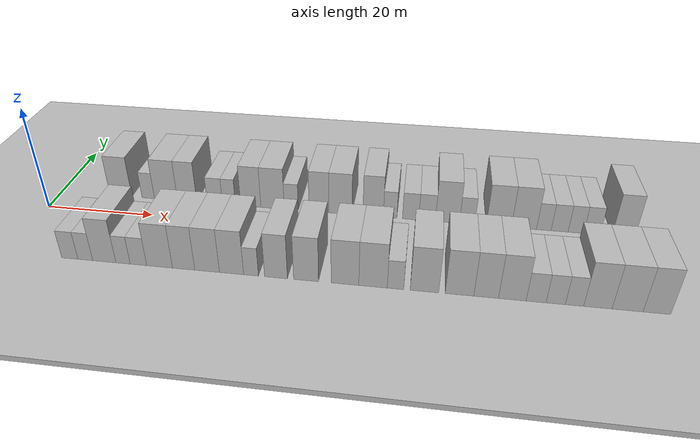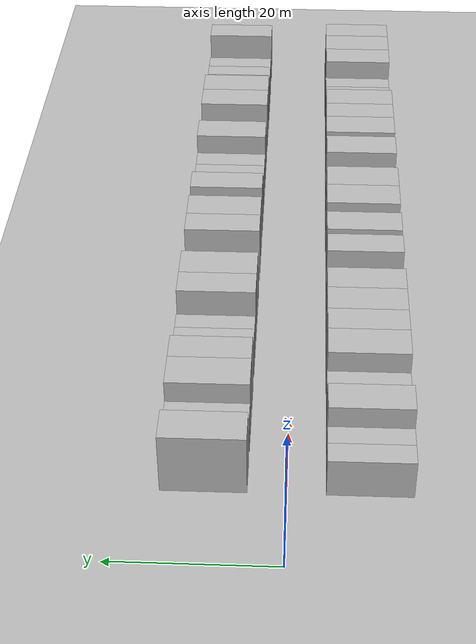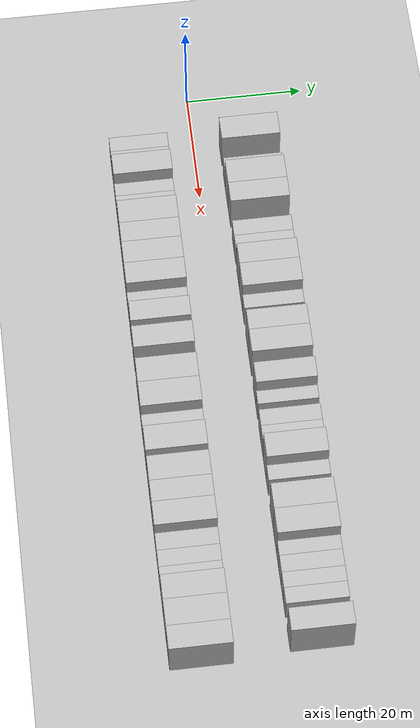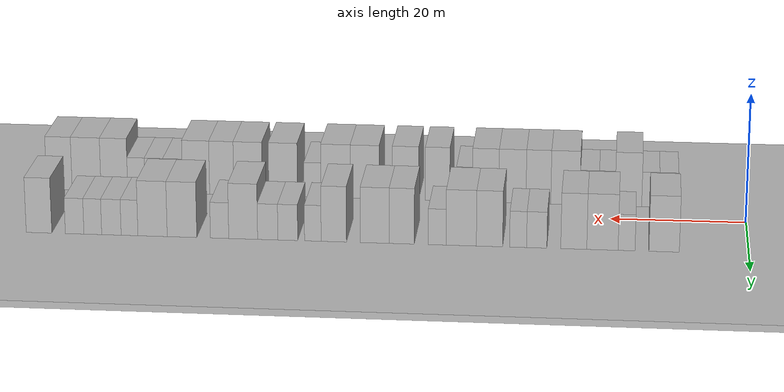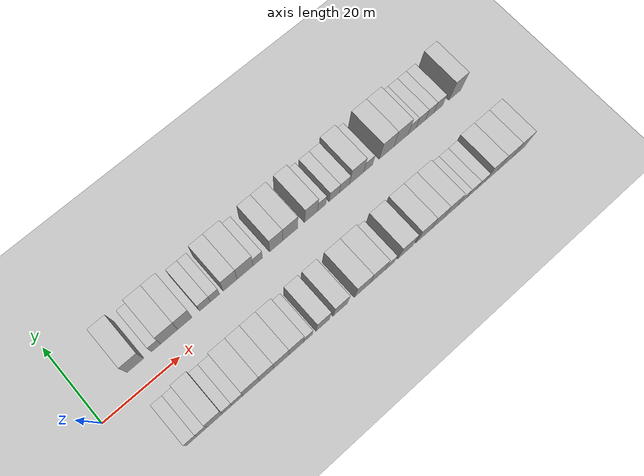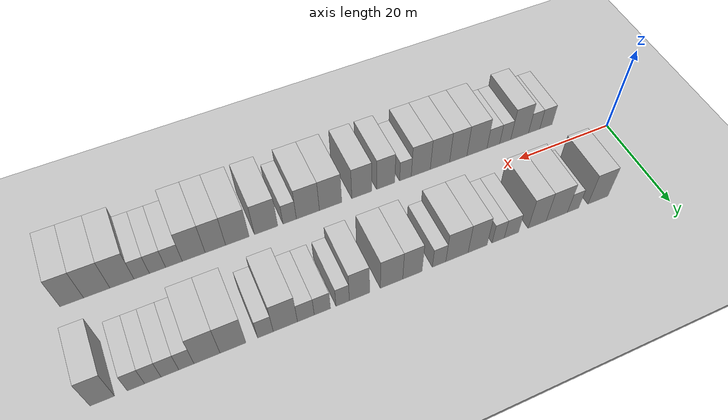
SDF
<sdf version="1.6">
 <world name="default">
  <include><name>ground_plane_1</name><uri>model://HANNAS_ground_plane</uri></include>
  <include>
   <name>ground_plane_2</name>
   <uri>model://HANNAS_ground_plane</uri>
   <pose>100 0 0  0 0 0</pose>
  </include>
  <model name="building_1">
   <static>1</static>
   <pose>12.1707 9.5000 0 0.000000 0.000000 1.570796</pose>
   <link name="link">
    <pose>0 0 4.50 0 0 0</pose>
    <collision name="collision"><geometry><box><size>10.0000 4.3413 9.0000</size></box></geometry></collision>
    <visual name="visual">
     <cast_shadows>0</cast_shadows>
     <geometry><box><size>10.0000 4.3413 9.0000</size></box></geometry>
     <material>
      <script>
       <uri>model://HANNAS_wall/materials/scripts</uri>
       <uri>model://HANNAS_wall/materials/textures</uri>
       <name>vrc/HANNAS_wall</name>
      </script>
     </material>
    </visual>
   </link>
  </model>
  <model name="building_2">
   <static>1</static>
   <pose>17.5541 9.5000 0 0.000000 0.000000 1.570796</pose>
   <link name="link">
    <pose>0 0 3.00 0 0 0</pose>
    <collision name="collision"><geometry><box><size>10.0000 2.4256 6.0000</size></box></geometry></collision>
    <visual name="visual">
     <cast_shadows>0</cast_shadows>
     <geometry><box><size>10.0000 2.4256 6.0000</size></box></geometry>
     <material>
      <script>
       <uri>model://HANNAS_wall/materials/scripts</uri>
       <uri>model://HANNAS_wall/materials/textures</uri>
       <name>vrc/HANNAS_wall</name>
      </script>
     </material>
    </visual>
   </link>
  </model>
  <model name="building_3">
   <static>1</static>
   <pose>21.0148 9.5000 0 0.000000 0.000000 1.570796</pose>
   <link name="link">
    <pose>0 0 4.50 0 0 0</pose>
    <collision name="collision"><geometry><box><size>10.0000 4.4958 9.0000</size></box></geometry></collision>
    <visual name="visual">
     <cast_shadows>0</cast_shadows>
     <geometry><box><size>10.0000 4.4958 9.0000</size></box></geometry>
     <material>
      <script>
       <uri>model://HANNAS_wall/materials/scripts</uri>
       <uri>model://HANNAS_wall/materials/textures</uri>
       <name>vrc/HANNAS_wall</name>
      </script>
     </material>
    </visual>
   </link>
  </model>
  <model name="building_4">
   <static>1</static>
   <pose>25.1344 9.5000 0 0.000000 0.000000 1.570796</pose>
   <link name="link">
    <pose>0 0 4.50 0 0 0</pose>
    <collision name="collision"><geometry><box><size>10.0000 3.7433 9.0000</size></box></geometry></collision>
    <visual name="visual">
     <cast_shadows>0</cast_shadows>
     <geometry><box><size>10.0000 3.7433 9.0000</size></box></geometry>
     <material>
      <script>
       <uri>model://HANNAS_wall/materials/scripts</uri>
       <uri>model://HANNAS_wall/materials/textures</uri>
       <name>vrc/HANNAS_wall</name>
      </script>
     </material>
    </visual>
   </link>
  </model>
  <model name="building_5">
   <static>1</static>
   <pose>30.4679 9.5000 0 0.000000 0.000000 1.570796</pose>
   <link name="link">
    <pose>0 0 3.00 0 0 0</pose>
    <collision name="collision"><geometry><box><size>10.0000 2.9237 6.0000</size></box></geometry></collision>
    <visual name="visual">
     <cast_shadows>0</cast_shadows>
     <geometry><box><size>10.0000 2.9237 6.0000</size></box></geometry>
     <material>
      <script>
       <uri>model://HANNAS_wall/materials/scripts</uri>
       <uri>model://HANNAS_wall/materials/textures</uri>
       <name>vrc/HANNAS_wall</name>
      </script>
     </material>
    </visual>
   </link>
  </model>
  <model name="building_6">
   <static>1</static>
   <pose>33.1570 9.5000 0 0.000000 0.000000 1.570796</pose>
   <link name="link">
    <pose>0 0 3.00 0 0 0</pose>
    <collision name="collision"><geometry><box><size>10.0000 2.4545 6.0000</size></box></geometry></collision>
    <visual name="visual">
     <cast_shadows>0</cast_shadows>
     <geometry><box><size>10.0000 2.4545 6.0000</size></box></geometry>
     <material>
      <script>
       <uri>model://HANNAS_wall/materials/scripts</uri>
       <uri>model://HANNAS_wall/materials/textures</uri>
       <name>vrc/HANNAS_wall</name>
      </script>
     </material>
    </visual>
   </link>
  </model>
  <model name="building_7">
   <static>1</static>
   <pose>37.2861 9.5000 0 0.000000 0.000000 1.570796</pose>
   <link name="link">
    <pose>0 0 4.50 0 0 0</pose>
    <collision name="collision"><geometry><box><size>10.0000 3.8037 9.0000</size></box></geometry></collision>
    <visual name="visual">
     <cast_shadows>0</cast_shadows>
     <geometry><box><size>10.0000 3.8037 9.0000</size></box></geometry>
     <material>
      <script>
       <uri>model://HANNAS_wall/materials/scripts</uri>
       <uri>model://HANNAS_wall/materials/textures</uri>
       <name>vrc/HANNAS_wall</name>
      </script>
     </material>
    </visual>
   </link>
  </model>
  <model name="building_8">
   <static>1</static>
   <pose>41.3800 9.5000 0 0.000000 0.000000 1.570796</pose>
   <link name="link">
    <pose>0 0 4.50 0 0 0</pose>
    <collision name="collision"><geometry><box><size>10.0000 4.3842 9.0000</size></box></geometry></collision>
    <visual name="visual">
     <cast_shadows>0</cast_shadows>
     <geometry><box><size>10.0000 4.3842 9.0000</size></box></geometry>
     <material>
      <script>
       <uri>model://HANNAS_wall/materials/scripts</uri>
       <uri>model://HANNAS_wall/materials/textures</uri>
       <name>vrc/HANNAS_wall</name>
      </script>
     </material>
    </visual>
   </link>
  </model>
  <model name="building_9">
   <static>1</static>
   <pose>44.8732 9.5000 0 0.000000 0.000000 1.570796</pose>
   <link name="link">
    <pose>0 0 3.00 0 0 0</pose>
    <collision name="collision"><geometry><box><size>10.0000 2.6022 6.0000</size></box></geometry></collision>
    <visual name="visual">
     <cast_shadows>0</cast_shadows>
     <geometry><box><size>10.0000 2.6022 6.0000</size></box></geometry>
     <material>
      <script>
       <uri>model://HANNAS_wall/materials/scripts</uri>
       <uri>model://HANNAS_wall/materials/textures</uri>
       <name>vrc/HANNAS_wall</name>
      </script>
     </material>
    </visual>
   </link>
  </model>
  <model name="building_10">
   <static>1</static>
   <pose>50.0068 9.5000 0 0.000000 0.000000 1.570796</pose>
   <link name="link">
    <pose>0 0 4.50 0 0 0</pose>
    <collision name="collision"><geometry><box><size>10.0000 3.6650 9.0000</size></box></geometry></collision>
    <visual name="visual">
     <cast_shadows>0</cast_shadows>
     <geometry><box><size>10.0000 3.6650 9.0000</size></box></geometry>
     <material>
      <script>
       <uri>model://HANNAS_wall/materials/scripts</uri>
       <uri>model://HANNAS_wall/materials/textures</uri>
       <name>vrc/HANNAS_wall</name>
      </script>
     </material>
    </visual>
   </link>
  </model>
  <model name="building_11">
   <static>1</static>
   <pose>53.9409 9.5000 0 0.000000 0.000000 1.570796</pose>
   <link name="link">
    <pose>0 0 4.50 0 0 0</pose>
    <collision name="collision"><geometry><box><size>10.0000 4.2031 9.0000</size></box></geometry></collision>
    <visual name="visual">
     <cast_shadows>0</cast_shadows>
     <geometry><box><size>10.0000 4.2031 9.0000</size></box></geometry>
     <material>
      <script>
       <uri>model://HANNAS_wall/materials/scripts</uri>
       <uri>model://HANNAS_wall/materials/textures</uri>
       <name>vrc/HANNAS_wall</name>
      </script>
     </material>
    </visual>
   </link>
  </model>
  <model name="building_12">
   <static>1</static>
   <pose>59.8919 9.5000 0 0.000000 0.000000 1.570796</pose>
   <link name="link">
    <pose>0 0 4.50 0 0 0</pose>
    <collision name="collision"><geometry><box><size>10.0000 3.6989 9.0000</size></box></geometry></collision>
    <visual name="visual">
     <cast_shadows>0</cast_shadows>
     <geometry><box><size>10.0000 3.6989 9.0000</size></box></geometry>
     <material>
      <script>
       <uri>model://HANNAS_wall/materials/scripts</uri>
       <uri>model://HANNAS_wall/materials/textures</uri>
       <name>vrc/HANNAS_wall</name>
      </script>
     </material>
    </visual>
   </link>
  </model>
  <model name="building_13">
   <static>1</static>
   <pose>62.9533 9.5000 0 0.000000 0.000000 1.570796</pose>
   <link name="link">
    <pose>0 0 3.00 0 0 0</pose>
    <collision name="collision"><geometry><box><size>10.0000 2.4239 6.0000</size></box></geometry></collision>
    <visual name="visual">
     <cast_shadows>0</cast_shadows>
     <geometry><box><size>10.0000 2.4239 6.0000</size></box></geometry>
     <material>
      <script>
       <uri>model://HANNAS_wall/materials/scripts</uri>
       <uri>model://HANNAS_wall/materials/textures</uri>
       <name>vrc/HANNAS_wall</name>
      </script>
     </material>
    </visual>
   </link>
  </model>
  <model name="building_14">
   <static>1</static>
   <pose>66.6167 9.5000 0 0.000000 0.000000 1.570796</pose>
   <link name="link">
    <pose>0 0 3.00 0 0 0</pose>
    <collision name="collision"><geometry><box><size>10.0000 2.9030 6.0000</size></box></geometry></collision>
    <visual name="visual">
     <cast_shadows>0</cast_shadows>
     <geometry><box><size>10.0000 2.9030 6.0000</size></box></geometry>
     <material>
      <script>
       <uri>model://HANNAS_wall/materials/scripts</uri>
       <uri>model://HANNAS_wall/materials/textures</uri>
       <name>vrc/HANNAS_wall</name>
      </script>
     </material>
    </visual>
   </link>
  </model>
  <model name="building_15">
   <static>1</static>
   <pose>69.5515 9.5000 0 0.000000 0.000000 1.570796</pose>
   <link name="link">
    <pose>0 0 3.00 0 0 0</pose>
    <collision name="collision"><geometry><box><size>10.0000 2.9666 6.0000</size></box></geometry></collision>
    <visual name="visual">
     <cast_shadows>0</cast_shadows>
     <geometry><box><size>10.0000 2.9666 6.0000</size></box></geometry>
     <material>
      <script>
       <uri>model://HANNAS_wall/materials/scripts</uri>
       <uri>model://HANNAS_wall/materials/textures</uri>
       <name>vrc/HANNAS_wall</name>
      </script>
     </material>
    </visual>
   </link>
  </model>
  <model name="building_16">
   <static>1</static>
   <pose>73.1514 9.5000 0 0.000000 0.000000 1.570796</pose>
   <link name="link">
    <pose>0 0 4.50 0 0 0</pose>
    <collision name="collision"><geometry><box><size>10.0000 4.2332 9.0000</size></box></geometry></collision>
    <visual name="visual">
     <cast_shadows>0</cast_shadows>
     <geometry><box><size>10.0000 4.2332 9.0000</size></box></geometry>
     <material>
      <script>
       <uri>model://HANNAS_wall/materials/scripts</uri>
       <uri>model://HANNAS_wall/materials/textures</uri>
       <name>vrc/HANNAS_wall</name>
      </script>
     </material>
    </visual>
   </link>
  </model>
  <model name="building_17">
   <static>1</static>
   <pose>76.6122 9.5000 0 0.000000 0.000000 1.570796</pose>
   <link name="link">
    <pose>0 0 3.00 0 0 0</pose>
    <collision name="collision"><geometry><box><size>10.0000 2.6884 6.0000</size></box></geometry></collision>
    <visual name="visual">
     <cast_shadows>0</cast_shadows>
     <geometry><box><size>10.0000 2.6884 6.0000</size></box></geometry>
     <material>
      <script>
       <uri>model://HANNAS_wall/materials/scripts</uri>
       <uri>model://HANNAS_wall/materials/textures</uri>
       <name>vrc/HANNAS_wall</name>
      </script>
     </material>
    </visual>
   </link>
  </model>
  <model name="building_18">
   <static>1</static>
   <pose>82.1351 9.5000 0 0.000000 0.000000 1.570796</pose>
   <link name="link">
    <pose>0 0 4.50 0 0 0</pose>
    <collision name="collision"><geometry><box><size>10.0000 4.3573 9.0000</size></box></geometry></collision>
    <visual name="visual">
     <cast_shadows>0</cast_shadows>
     <geometry><box><size>10.0000 4.3573 9.0000</size></box></geometry>
     <material>
      <script>
       <uri>model://HANNAS_wall/materials/scripts</uri>
       <uri>model://HANNAS_wall/materials/textures</uri>
       <name>vrc/HANNAS_wall</name>
      </script>
     </material>
    </visual>
   </link>
  </model>
  <model name="building_19">
   <static>1</static>
   <pose>86.4716 9.5000 0 0.000000 0.000000 1.570796</pose>
   <link name="link">
    <pose>0 0 4.50 0 0 0</pose>
    <collision name="collision"><geometry><box><size>10.0000 4.3158 9.0000</size></box></geometry></collision>
    <visual name="visual">
     <cast_shadows>0</cast_shadows>
     <geometry><box><size>10.0000 4.3158 9.0000</size></box></geometry>
     <material>
      <script>
       <uri>model://HANNAS_wall/materials/scripts</uri>
       <uri>model://HANNAS_wall/materials/textures</uri>
       <name>vrc/HANNAS_wall</name>
      </script>
     </material>
    </visual>
   </link>
  </model>
  <model name="building_20">
   <static>1</static>
   <pose>89.8686 9.5000 0 0.000000 0.000000 1.570796</pose>
   <link name="link">
    <pose>0 0 3.00 0 0 0</pose>
    <collision name="collision"><geometry><box><size>10.0000 2.4782 6.0000</size></box></geometry></collision>
    <visual name="visual">
     <cast_shadows>0</cast_shadows>
     <geometry><box><size>10.0000 2.4782 6.0000</size></box></geometry>
     <material>
      <script>
       <uri>model://HANNAS_wall/materials/scripts</uri>
       <uri>model://HANNAS_wall/materials/textures</uri>
       <name>vrc/HANNAS_wall</name>
      </script>
     </material>
    </visual>
   </link>
  </model>
  <model name="building_21">
   <static>1</static>
   <pose>92.5483 9.5000 0 0.000000 0.000000 1.570796</pose>
   <link name="link">
    <pose>0 0 3.00 0 0 0</pose>
    <collision name="collision"><geometry><box><size>10.0000 2.8812 6.0000</size></box></geometry></collision>
    <visual name="visual">
     <cast_shadows>0</cast_shadows>
     <geometry><box><size>10.0000 2.8812 6.0000</size></box></geometry>
     <material>
      <script>
       <uri>model://HANNAS_wall/materials/scripts</uri>
       <uri>model://HANNAS_wall/materials/textures</uri>
       <name>vrc/HANNAS_wall</name>
      </script>
     </material>
    </visual>
   </link>
  </model>
  <model name="building_22">
   <static>1</static>
   <pose>95.3012 9.5000 0 0.000000 0.000000 1.570796</pose>
   <link name="link">
    <pose>0 0 3.00 0 0 0</pose>
    <collision name="collision"><geometry><box><size>10.0000 2.6247 6.0000</size></box></geometry></collision>
    <visual name="visual">
     <cast_shadows>0</cast_shadows>
     <geometry><box><size>10.0000 2.6247 6.0000</size></box></geometry>
     <material>
      <script>
       <uri>model://HANNAS_wall/materials/scripts</uri>
       <uri>model://HANNAS_wall/materials/textures</uri>
       <name>vrc/HANNAS_wall</name>
      </script>
     </material>
    </visual>
   </link>
  </model>
  <model name="building_23">
   <static>1</static>
   <pose>97.9914 9.5000 0 0.000000 0.000000 1.570796</pose>
   <link name="link">
    <pose>0 0 3.00 0 0 0</pose>
    <collision name="collision"><geometry><box><size>10.0000 2.7557 6.0000</size></box></geometry></collision>
    <visual name="visual">
     <cast_shadows>0</cast_shadows>
     <geometry><box><size>10.0000 2.7557 6.0000</size></box></geometry>
     <material>
      <script>
       <uri>model://HANNAS_wall/materials/scripts</uri>
       <uri>model://HANNAS_wall/materials/textures</uri>
       <name>vrc/HANNAS_wall</name>
      </script>
     </material>
    </visual>
   </link>
  </model>
  <model name="building_24">
   <static>1</static>
   <pose>103.2689 9.5000 0 0.000000 0.000000 1.570796</pose>
   <link name="link">
    <pose>0 0 4.50 0 0 0</pose>
    <collision name="collision"><geometry><box><size>10.0000 3.7992 9.0000</size></box></geometry></collision>
    <visual name="visual">
     <cast_shadows>0</cast_shadows>
     <geometry><box><size>10.0000 3.7992 9.0000</size></box></geometry>
     <material>
      <script>
       <uri>model://HANNAS_wall/materials/scripts</uri>
       <uri>model://HANNAS_wall/materials/textures</uri>
       <name>vrc/HANNAS_wall</name>
      </script>
     </material>
    </visual>
   </link>
  </model>
  <model name="building_50">
   <static>1</static>
   <pose>11.4105 -9.5000 0 0.000000 0.000000 1.570796</pose>
   <link name="link">
    <pose>0 0 3.00 0 0 0</pose>
    <collision name="collision"><geometry><box><size>10.0000 2.8209 6.0000</size></box></geometry></collision>
    <visual name="visual">
     <cast_shadows>0</cast_shadows>
     <geometry><box><size>10.0000 2.8209 6.0000</size></box></geometry>
     <material>
      <script>
       <uri>model://HANNAS_wall/materials/scripts</uri>
       <uri>model://HANNAS_wall/materials/textures</uri>
       <name>vrc/HANNAS_wall</name>
      </script>
     </material>
    </visual>
   </link>
  </model>
  <model name="building_51">
   <static>1</static>
   <pose>14.1121 -9.5000 0 0.000000 0.000000 1.570796</pose>
   <link name="link">
    <pose>0 0 3.00 0 0 0</pose>
    <collision name="collision"><geometry><box><size>10.0000 2.5823 6.0000</size></box></geometry></collision>
    <visual name="visual">
     <cast_shadows>0</cast_shadows>
     <geometry><box><size>10.0000 2.5823 6.0000</size></box></geometry>
     <material>
      <script>
       <uri>model://HANNAS_wall/materials/scripts</uri>
       <uri>model://HANNAS_wall/materials/textures</uri>
       <name>vrc/HANNAS_wall</name>
      </script>
     </material>
    </visual>
   </link>
  </model>
  <model name="building_52">
   <static>1</static>
   <pose>17.4011 -9.5000 0 0.000000 0.000000 1.570796</pose>
   <link name="link">
    <pose>0 0 4.50 0 0 0</pose>
    <collision name="collision"><geometry><box><size>10.0000 3.9959 9.0000</size></box></geometry></collision>
    <visual name="visual">
     <cast_shadows>0</cast_shadows>
     <geometry><box><size>10.0000 3.9959 9.0000</size></box></geometry>
     <material>
      <script>
       <uri>model://HANNAS_wall/materials/scripts</uri>
       <uri>model://HANNAS_wall/materials/textures</uri>
       <name>vrc/HANNAS_wall</name>
      </script>
     </material>
    </visual>
   </link>
  </model>
  <model name="building_53">
   <static>1</static>
   <pose>20.6244 -9.5000 0 0.000000 0.000000 1.570796</pose>
   <link name="link">
    <pose>0 0 3.00 0 0 0</pose>
    <collision name="collision"><geometry><box><size>10.0000 2.4506 6.0000</size></box></geometry></collision>
    <visual name="visual">
     <cast_shadows>0</cast_shadows>
     <geometry><box><size>10.0000 2.4506 6.0000</size></box></geometry>
     <material>
      <script>
       <uri>model://HANNAS_wall/materials/scripts</uri>
       <uri>model://HANNAS_wall/materials/textures</uri>
       <name>vrc/HANNAS_wall</name>
      </script>
     </material>
    </visual>
   </link>
  </model>
  <model name="building_54">
   <static>1</static>
   <pose>23.2580 -9.5000 0 0.000000 0.000000 1.570796</pose>
   <link name="link">
    <pose>0 0 3.00 0 0 0</pose>
    <collision name="collision"><geometry><box><size>10.0000 2.8168 6.0000</size></box></geometry></collision>
    <visual name="visual">
     <cast_shadows>0</cast_shadows>
     <geometry><box><size>10.0000 2.8168 6.0000</size></box></geometry>
     <material>
      <script>
       <uri>model://HANNAS_wall/materials/scripts</uri>
       <uri>model://HANNAS_wall/materials/textures</uri>
       <name>vrc/HANNAS_wall</name>
      </script>
     </material>
    </visual>
   </link>
  </model>
  <model name="building_55">
   <static>1</static>
   <pose>26.8555 -9.5000 0 0.000000 0.000000 1.570796</pose>
   <link name="link">
    <pose>0 0 4.50 0 0 0</pose>
    <collision name="collision"><geometry><box><size>10.0000 4.3781 9.0000</size></box></geometry></collision>
    <visual name="visual">
     <cast_shadows>0</cast_shadows>
     <geometry><box><size>10.0000 4.3781 9.0000</size></box></geometry>
     <material>
      <script>
       <uri>model://HANNAS_wall/materials/scripts</uri>
       <uri>model://HANNAS_wall/materials/textures</uri>
       <name>vrc/HANNAS_wall</name>
      </script>
     </material>
    </visual>
   </link>
  </model>
  <model name="building_56">
   <static>1</static>
   <pose>30.9139 -9.5000 0 0.000000 0.000000 1.570796</pose>
   <link name="link">
    <pose>0 0 4.50 0 0 0</pose>
    <collision name="collision"><geometry><box><size>10.0000 3.7389 9.0000</size></box></geometry></collision>
    <visual name="visual">
     <cast_shadows>0</cast_shadows>
     <geometry><box><size>10.0000 3.7389 9.0000</size></box></geometry>
     <material>
      <script>
       <uri>model://HANNAS_wall/materials/scripts</uri>
       <uri>model://HANNAS_wall/materials/textures</uri>
       <name>vrc/HANNAS_wall</name>
      </script>
     </material>
    </visual>
   </link>
  </model>
  <model name="building_57">
   <static>1</static>
   <pose>34.8366 -9.5000 0 0.000000 0.000000 1.570796</pose>
   <link name="link">
    <pose>0 0 4.50 0 0 0</pose>
    <collision name="collision"><geometry><box><size>10.0000 4.1064 9.0000</size></box></geometry></collision>
    <visual name="visual">
     <cast_shadows>0</cast_shadows>
     <geometry><box><size>10.0000 4.1064 9.0000</size></box></geometry>
     <material>
      <script>
       <uri>model://HANNAS_wall/materials/scripts</uri>
       <uri>model://HANNAS_wall/materials/textures</uri>
       <name>vrc/HANNAS_wall</name>
      </script>
     </material>
    </visual>
   </link>
  </model>
  <model name="building_58">
   <static>1</static>
   <pose>38.8855 -9.5000 0 0.000000 0.000000 1.570796</pose>
   <link name="link">
    <pose>0 0 4.50 0 0 0</pose>
    <collision name="collision"><geometry><box><size>10.0000 3.9913 9.0000</size></box></geometry></collision>
    <visual name="visual">
     <cast_shadows>0</cast_shadows>
     <geometry><box><size>10.0000 3.9913 9.0000</size></box></geometry>
     <material>
      <script>
       <uri>model://HANNAS_wall/materials/scripts</uri>
       <uri>model://HANNAS_wall/materials/textures</uri>
       <name>vrc/HANNAS_wall</name>
      </script>
     </material>
    </visual>
   </link>
  </model>
  <model name="building_59">
   <static>1</static>
   <pose>42.0881 -9.5000 0 0.000000 0.000000 1.570796</pose>
   <link name="link">
    <pose>0 0 3.00 0 0 0</pose>
    <collision name="collision"><geometry><box><size>10.0000 2.4140 6.0000</size></box></geometry></collision>
    <visual name="visual">
     <cast_shadows>0</cast_shadows>
     <geometry><box><size>10.0000 2.4140 6.0000</size></box></geometry>
     <material>
      <script>
       <uri>model://HANNAS_wall/materials/scripts</uri>
       <uri>model://HANNAS_wall/materials/textures</uri>
       <name>vrc/HANNAS_wall</name>
      </script>
     </material>
    </visual>
   </link>
  </model>
  <model name="building_60">
   <static>1</static>
   <pose>46.1502 -9.5000 0 0.000000 0.000000 1.570796</pose>
   <link name="link">
    <pose>0 0 4.50 0 0 0</pose>
    <collision name="collision"><geometry><box><size>10.0000 3.7102 9.0000</size></box></geometry></collision>
    <visual name="visual">
     <cast_shadows>0</cast_shadows>
     <geometry><box><size>10.0000 3.7102 9.0000</size></box></geometry>
     <material>
      <script>
       <uri>model://HANNAS_wall/materials/scripts</uri>
       <uri>model://HANNAS_wall/materials/textures</uri>
       <name>vrc/HANNAS_wall</name>
      </script>
     </material>
    </visual>
   </link>
  </model>
  <model name="building_61">
   <static>1</static>
   <pose>51.0048 -9.5000 0 0.000000 0.000000 1.570796</pose>
   <link name="link">
    <pose>0 0 4.50 0 0 0</pose>
    <collision name="collision"><geometry><box><size>10.0000 3.9990 9.0000</size></box></geometry></collision>
    <visual name="visual">
     <cast_shadows>0</cast_shadows>
     <geometry><box><size>10.0000 3.9990 9.0000</size></box></geometry>
     <material>
      <script>
       <uri>model://HANNAS_wall/materials/scripts</uri>
       <uri>model://HANNAS_wall/materials/textures</uri>
       <name>vrc/HANNAS_wall</name>
      </script>
     </material>
    </visual>
   </link>
  </model>
  <model name="building_62">
   <static>1</static>
   <pose>57.1991 -9.5000 0 0.000000 0.000000 1.570796</pose>
   <link name="link">
    <pose>0 0 4.50 0 0 0</pose>
    <collision name="collision"><geometry><box><size>10.0000 4.3896 9.0000</size></box></geometry></collision>
    <visual name="visual">
     <cast_shadows>0</cast_shadows>
     <geometry><box><size>10.0000 4.3896 9.0000</size></box></geometry>
     <material>
      <script>
       <uri>model://HANNAS_wall/materials/scripts</uri>
       <uri>model://HANNAS_wall/materials/textures</uri>
       <name>vrc/HANNAS_wall</name>
      </script>
     </material>
    </visual>
   </link>
  </model>
  <model name="building_63">
   <static>1</static>
   <pose>61.6279 -9.5000 0 0.000000 0.000000 1.570796</pose>
   <link name="link">
    <pose>0 0 4.50 0 0 0</pose>
    <collision name="collision"><geometry><box><size>10.0000 4.4680 9.0000</size></box></geometry></collision>
    <visual name="visual">
     <cast_shadows>0</cast_shadows>
     <geometry><box><size>10.0000 4.4680 9.0000</size></box></geometry>
     <material>
      <script>
       <uri>model://HANNAS_wall/materials/scripts</uri>
       <uri>model://HANNAS_wall/materials/textures</uri>
       <name>vrc/HANNAS_wall</name>
      </script>
     </material>
    </visual>
   </link>
  </model>
  <model name="building_64">
   <static>1</static>
   <pose>65.1466 -9.5000 0 0.000000 0.000000 1.570796</pose>
   <link name="link">
    <pose>0 0 3.00 0 0 0</pose>
    <collision name="collision"><geometry><box><size>10.0000 2.5694 6.0000</size></box></geometry></collision>
    <visual name="visual">
     <cast_shadows>0</cast_shadows>
     <geometry><box><size>10.0000 2.5694 6.0000</size></box></geometry>
     <material>
      <script>
       <uri>model://HANNAS_wall/materials/scripts</uri>
       <uri>model://HANNAS_wall/materials/textures</uri>
       <name>vrc/HANNAS_wall</name>
      </script>
     </material>
    </visual>
   </link>
  </model>
  <model name="building_65">
   <static>1</static>
   <pose>69.6261 -9.5000 0 0.000000 0.000000 1.570796</pose>
   <link name="link">
    <pose>0 0 4.50 0 0 0</pose>
    <collision name="collision"><geometry><box><size>10.0000 4.3897 9.0000</size></box></geometry></collision>
    <visual name="visual">
     <cast_shadows>0</cast_shadows>
     <geometry><box><size>10.0000 4.3897 9.0000</size></box></geometry>
     <material>
      <script>
       <uri>model://HANNAS_wall/materials/scripts</uri>
       <uri>model://HANNAS_wall/materials/textures</uri>
       <name>vrc/HANNAS_wall</name>
      </script>
     </material>
    </visual>
   </link>
  </model>
  <model name="building_66">
   <static>1</static>
   <pose>74.9949 -9.5000 0 0.000000 0.000000 1.570796</pose>
   <link name="link">
    <pose>0 0 4.50 0 0 0</pose>
    <collision name="collision"><geometry><box><size>10.0000 4.3479 9.0000</size></box></geometry></collision>
    <visual name="visual">
     <cast_shadows>0</cast_shadows>
     <geometry><box><size>10.0000 4.3479 9.0000</size></box></geometry>
     <material>
      <script>
       <uri>model://HANNAS_wall/materials/scripts</uri>
       <uri>model://HANNAS_wall/materials/textures</uri>
       <name>vrc/HANNAS_wall</name>
      </script>
     </material>
    </visual>
   </link>
  </model>
  <model name="building_67">
   <static>1</static>
   <pose>79.0279 -9.5000 0 0.000000 0.000000 1.570796</pose>
   <link name="link">
    <pose>0 0 4.50 0 0 0</pose>
    <collision name="collision"><geometry><box><size>10.0000 3.7179 9.0000</size></box></geometry></collision>
    <visual name="visual">
     <cast_shadows>0</cast_shadows>
     <geometry><box><size>10.0000 3.7179 9.0000</size></box></geometry>
     <material>
      <script>
       <uri>model://HANNAS_wall/materials/scripts</uri>
       <uri>model://HANNAS_wall/materials/textures</uri>
       <name>vrc/HANNAS_wall</name>
      </script>
     </material>
    </visual>
   </link>
  </model>
  <model name="building_68">
   <static>1</static>
   <pose>82.9520 -9.5000 0 0.000000 0.000000 1.570796</pose>
   <link name="link">
    <pose>0 0 4.50 0 0 0</pose>
    <collision name="collision"><geometry><box><size>10.0000 4.1304 9.0000</size></box></geometry></collision>
    <visual name="visual">
     <cast_shadows>0</cast_shadows>
     <geometry><box><size>10.0000 4.1304 9.0000</size></box></geometry>
     <material>
      <script>
       <uri>model://HANNAS_wall/materials/scripts</uri>
       <uri>model://HANNAS_wall/materials/textures</uri>
       <name>vrc/HANNAS_wall</name>
      </script>
     </material>
    </visual>
   </link>
  </model>
  <model name="building_69">
   <static>1</static>
   <pose>86.4962 -9.5000 0 0.000000 0.000000 1.570796</pose>
   <link name="link">
    <pose>0 0 3.00 0 0 0</pose>
    <collision name="collision"><geometry><box><size>10.0000 2.9579 6.0000</size></box></geometry></collision>
    <visual name="visual">
     <cast_shadows>0</cast_shadows>
     <geometry><box><size>10.0000 2.9579 6.0000</size></box></geometry>
     <material>
      <script>
       <uri>model://HANNAS_wall/materials/scripts</uri>
       <uri>model://HANNAS_wall/materials/textures</uri>
       <name>vrc/HANNAS_wall</name>
      </script>
     </material>
    </visual>
   </link>
  </model>
  <model name="building_70">
   <static>1</static>
   <pose>89.3954 -9.5000 0 0.000000 0.000000 1.570796</pose>
   <link name="link">
    <pose>0 0 3.00 0 0 0</pose>
    <collision name="collision"><geometry><box><size>10.0000 2.8405 6.0000</size></box></geometry></collision>
    <visual name="visual">
     <cast_shadows>0</cast_shadows>
     <geometry><box><size>10.0000 2.8405 6.0000</size></box></geometry>
     <material>
      <script>
       <uri>model://HANNAS_wall/materials/scripts</uri>
       <uri>model://HANNAS_wall/materials/textures</uri>
       <name>vrc/HANNAS_wall</name>
      </script>
     </material>
    </visual>
   </link>
  </model>
  <model name="building_71">
   <static>1</static>
   <pose>92.1543 -9.5000 0 0.000000 0.000000 1.570796</pose>
   <link name="link">
    <pose>0 0 3.00 0 0 0</pose>
    <collision name="collision"><geometry><box><size>10.0000 2.6773 6.0000</size></box></geometry></collision>
    <visual name="visual">
     <cast_shadows>0</cast_shadows>
     <geometry><box><size>10.0000 2.6773 6.0000</size></box></geometry>
     <material>
      <script>
       <uri>model://HANNAS_wall/materials/scripts</uri>
       <uri>model://HANNAS_wall/materials/textures</uri>
       <name>vrc/HANNAS_wall</name>
      </script>
     </material>
    </visual>
   </link>
  </model>
  <model name="building_72">
   <static>1</static>
   <pose>95.5562 -9.5000 0 0.000000 0.000000 1.570796</pose>
   <link name="link">
    <pose>0 0 4.50 0 0 0</pose>
    <collision name="collision"><geometry><box><size>10.0000 4.1266 9.0000</size></box></geometry></collision>
    <visual name="visual">
     <cast_shadows>0</cast_shadows>
     <geometry><box><size>10.0000 4.1266 9.0000</size></box></geometry>
     <material>
      <script>
       <uri>model://HANNAS_wall/materials/scripts</uri>
       <uri>model://HANNAS_wall/materials/textures</uri>
       <name>vrc/HANNAS_wall</name>
      </script>
     </material>
    </visual>
   </link>
  </model>
  <model name="building_73">
   <static>1</static>
   <pose>99.8492 -9.5000 0 0.000000 0.000000 1.570796</pose>
   <link name="link">
    <pose>0 0 4.50 0 0 0</pose>
    <collision name="collision"><geometry><box><size>10.0000 4.4594 9.0000</size></box></geometry></collision>
    <visual name="visual">
     <cast_shadows>0</cast_shadows>
     <geometry><box><size>10.0000 4.4594 9.0000</size></box></geometry>
     <material>
      <script>
       <uri>model://HANNAS_wall/materials/scripts</uri>
       <uri>model://HANNAS_wall/materials/textures</uri>
       <name>vrc/HANNAS_wall</name>
      </script>
     </material>
    </visual>
   </link>
  </model>
  <model name="building_74">
   <static>1</static>
   <pose>104.0500 -9.5000 0 0.000000 0.000000 1.570796</pose>
   <link name="link">
    <pose>0 0 4.50 0 0 0</pose>
    <collision name="collision"><geometry><box><size>10.0000 3.9421 9.0000</size></box></geometry></collision>
    <visual name="visual">
     <cast_shadows>0</cast_shadows>
     <geometry><box><size>10.0000 3.9421 9.0000</size></box></geometry>
     <material>
      <script>
       <uri>model://HANNAS_wall/materials/scripts</uri>
       <uri>model://HANNAS_wall/materials/textures</uri>
       <name>vrc/HANNAS_wall</name>
      </script>
     </material>
    </visual>
   </link>
  </model>
 </world>
</sdf>
